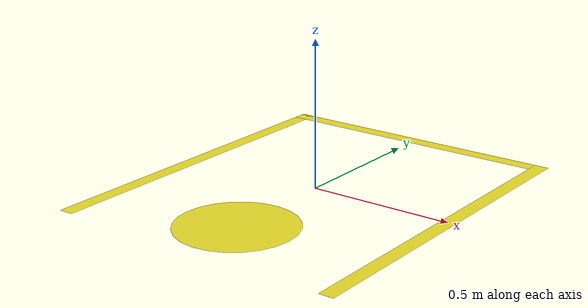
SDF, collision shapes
<?xml version='1.0'?>
<sdf version='1.6'>
  <model name='oneDemoParking_120x160'>
    <link name='link_1'>
      <inertial>
        <mass>1</mass>
        <inertia>
          <ixx>0.166667</ixx>
          <ixy>0</ixy>
          <ixz>0</ixz>
          <iyy>0.166667</iyy>
          <iyz>0</iyz>
          <izz>0.166667</izz>
        </inertia>
        <pose frame=''>0 0 0 0 -0 0</pose>
      </inertial>
      <pose frame=''>0 0 0 0 -0 0</pose>
      <gravity>1</gravity>
      <self_collide>0</self_collide>
      <kinematic>0</kinematic>
      <enable_wind>0</enable_wind>
      <visual name='visual'>
        <pose frame=''>-0.625 0 0 0 -0 0</pose>
        <geometry>
          <box>
            <size>0.05 1.6 0.001</size>
          </box>
        </geometry>
        <material>
          <lighting>1</lighting>
          <script>
            <uri>file://media/materials/scripts/gazebo.material</uri>
            <name>Gazebo/Yellow</name>
          </script>
          <shader type='pixel'>
            <normal_map>__default__</normal_map>
          </shader>
        </material>
        <transparency>0</transparency>
        <cast_shadows>1</cast_shadows>
      </visual>
      <visual name='ModelPreview_3::link_1::visual_3'>
        <pose frame=''>0 0.825 0 0 -0 0</pose>
        <geometry>
          <box>
            <size>1.3 0.05 0.001</size>
          </box>
        </geometry>
        <material>
          <lighting>1</lighting>
          <script>
            <uri>file://media/materials/scripts/gazebo.material</uri>
            <name>Gazebo/Yellow</name>
          </script>
          <shader type='pixel'>
            <normal_map>__default__</normal_map>
          </shader>
        </material>
        <transparency>0</transparency>
        <cast_shadows>1</cast_shadows>
      </visual>
      <visual name='ModelPreview_3::link_1::visual_2'>
        <pose frame=''>0.625 0 0 0 -0 0</pose>
        <geometry>
          <box>
            <size>0.05 1.6 0.001</size>
          </box>
        </geometry>
        <material>
          <lighting>1</lighting>
          <script>
            <uri>file://media/materials/scripts/gazebo.material</uri>
            <name>Gazebo/Yellow</name>
          </script>
          <shader type='pixel'>
            <normal_map>__default__</normal_map>
          </shader>
        </material>
        <transparency>0</transparency>
        <cast_shadows>1</cast_shadows>
      </visual>
      <visual name='ModelPreview_3::link_1::visual_4'>
        <pose frame=''>0.28 -0.43 0 0 -0 2.7</pose>
        <geometry>
	   <mesh>
             <uri>model://oneDemoParking_120x160/model/model.dae</uri>
             <scale>0.266 0.266 0.266</scale>
           </mesh>
        </geometry>
        <material>
          <lighting>1</lighting>
          <shader type='pixel'>
            <normal_map>__default__</normal_map>
          </shader>
        </material>
        <transparency>0</transparency>
        <cast_shadows>1</cast_shadows>
      </visual>
      <collision name='collision'>
        <laser_retro>0</laser_retro>
        <max_contacts>10</max_contacts>
        <pose frame=''>-0.5 0 0 0 -0 0</pose>
        <geometry>
          <box>
            <size>0.05 1.26 0.00001</size>
          </box>
        </geometry>
        <surface>
          <friction>
            <ode>
              <mu>1</mu>
              <mu2>1</mu2>
              <fdir1>0 0 0</fdir1>
              <slip1>0</slip1>
              <slip2>0</slip2>
            </ode>
            <torsional>
              <coefficient>1</coefficient>
              <patch_radius>0</patch_radius>
              <surface_radius>0</surface_radius>
              <use_patch_radius>1</use_patch_radius>
              <ode>
                <slip>0</slip>
              </ode>
            </torsional>
          </friction>
          <bounce>
            <restitution_coefficient>0</restitution_coefficient>
            <threshold>1e+06</threshold>
          </bounce>
          <contact>
            <collide_without_contact>0</collide_without_contact>
            <collide_without_contact_bitmask>1</collide_without_contact_bitmask>
            <collide_bitmask>1</collide_bitmask>
            <ode>
              <soft_cfm>0</soft_cfm>
              <soft_erp>0.2</soft_erp>
              <kp>1e+13</kp>
              <kd>1</kd>
              <max_vel>0.01</max_vel>
              <min_depth>0</min_depth>
            </ode>
            <bullet>
              <split_impulse>1</split_impulse>
              <split_impulse_penetration_threshold>-0.01</split_impulse_penetration_threshold>
              <soft_cfm>0</soft_cfm>
              <soft_erp>0.2</soft_erp>
              <kp>1e+13</kp>
              <kd>1</kd>
            </bullet>
          </contact>
        </surface>
      </collision>
      <collision name='collision_1'>
        <laser_retro>0</laser_retro>
        <max_contacts>10</max_contacts>
        <pose frame=''>0.5 0 0 0 -0 0</pose>
        <geometry>
          <box>
            <size>0.05 1.26 0.00001</size>
          </box>
        </geometry>
        <surface>
          <friction>
            <ode>
              <mu>1</mu>
              <mu2>1</mu2>
              <fdir1>0 0 0</fdir1>
              <slip1>0</slip1>
              <slip2>0</slip2>
            </ode>
            <torsional>
              <coefficient>1</coefficient>
              <patch_radius>0</patch_radius>
              <surface_radius>0</surface_radius>
              <use_patch_radius>1</use_patch_radius>
              <ode>
                <slip>0</slip>
              </ode>
            </torsional>
          </friction>
          <bounce>
            <restitution_coefficient>0</restitution_coefficient>
            <threshold>1e+06</threshold>
          </bounce>
          <contact>
            <collide_without_contact>0</collide_without_contact>
            <collide_without_contact_bitmask>1</collide_without_contact_bitmask>
            <collide_bitmask>1</collide_bitmask>
            <ode>
              <soft_cfm>0</soft_cfm>
              <soft_erp>0.2</soft_erp>
              <kp>1e+13</kp>
              <kd>1</kd>
              <max_vel>0.01</max_vel>
              <min_depth>0</min_depth>
            </ode>
            <bullet>
              <split_impulse>1</split_impulse>
              <split_impulse_penetration_threshold>-0.01</split_impulse_penetration_threshold>
              <soft_cfm>0</soft_cfm>
              <soft_erp>0.2</soft_erp>
              <kp>1e+13</kp>
              <kd>1</kd>
            </bullet>
          </contact>
        </surface>
      </collision>
      <collision name='collision_2'>
        <laser_retro>0</laser_retro>
        <max_contacts>10</max_contacts>
        <pose frame=''>0 0.605 0 0 -0 0</pose>
        <geometry>
          <box>
            <size>1.05 0.05 0.00001</size>
          </box>
        </geometry>
        <surface>
          <friction>
            <ode>
              <mu>1</mu>
              <mu2>1</mu2>
              <fdir1>0 0 0</fdir1>
              <slip1>0</slip1>
              <slip2>0</slip2>
            </ode>
            <torsional>
              <coefficient>1</coefficient>
              <patch_radius>0</patch_radius>
              <surface_radius>0</surface_radius>
              <use_patch_radius>1</use_patch_radius>
              <ode>
                <slip>0</slip>
              </ode>
            </torsional>
          </friction>
          <bounce>
            <restitution_coefficient>0</restitution_coefficient>
            <threshold>1e+06</threshold>
          </bounce>
          <contact>
            <collide_without_contact>0</collide_without_contact>
            <collide_without_contact_bitmask>1</collide_without_contact_bitmask>
            <collide_bitmask>1</collide_bitmask>
            <ode>
              <soft_cfm>0</soft_cfm>
              <soft_erp>0.2</soft_erp>
              <kp>1e+13</kp>
              <kd>1</kd>
              <max_vel>0.01</max_vel>
              <min_depth>0</min_depth>
            </ode>
            <bullet>
              <split_impulse>1</split_impulse>
              <split_impulse_penetration_threshold>-0.01</split_impulse_penetration_threshold>
              <soft_cfm>0</soft_cfm>
              <soft_erp>0.2</soft_erp>
              <kp>1e+13</kp>
              <kd>1</kd>
            </bullet>
          </contact>
        </surface>
      </collision>
      <collision name='collision_3'>
        <laser_retro>0</laser_retro>
        <max_contacts>10</max_contacts>
        <pose frame=''>-0 -0.4 0 0 -0 0</pose>
        <geometry>
          <cylinder>
            <radius>0.2</radius>
            <length>0.00001</length>
          </cylinder>
        </geometry>
        <surface>
          <friction>
            <ode>
              <mu>1</mu>
              <mu2>1</mu2>
              <fdir1>0 0 0</fdir1>
              <slip1>0</slip1>
              <slip2>0</slip2>
            </ode>
            <torsional>
              <coefficient>1</coefficient>
              <patch_radius>0</patch_radius>
              <surface_radius>0</surface_radius>
              <use_patch_radius>1</use_patch_radius>
              <ode>
                <slip>0</slip>
              </ode>
            </torsional>
          </friction>
          <bounce>
            <restitution_coefficient>0</restitution_coefficient>
            <threshold>1e+06</threshold>
          </bounce>
          <contact>
            <collide_without_contact>0</collide_without_contact>
            <collide_without_contact_bitmask>1</collide_without_contact_bitmask>
            <collide_bitmask>1</collide_bitmask>
            <ode>
              <soft_cfm>0</soft_cfm>
              <soft_erp>0.2</soft_erp>
              <kp>1e+13</kp>
              <kd>1</kd>
              <max_vel>0.01</max_vel>
              <min_depth>0</min_depth>
            </ode>
            <bullet>
              <split_impulse>1</split_impulse>
              <split_impulse_penetration_threshold>-0.01</split_impulse_penetration_threshold>
              <soft_cfm>0</soft_cfm>
              <soft_erp>0.2</soft_erp>
              <kp>1e+13</kp>
              <kd>1</kd>
            </bullet>
          </contact>
        </surface>
      </collision>
    </link>
    <static>1</static>
    <allow_auto_disable>1</allow_auto_disable>
  </model>
</sdf>
